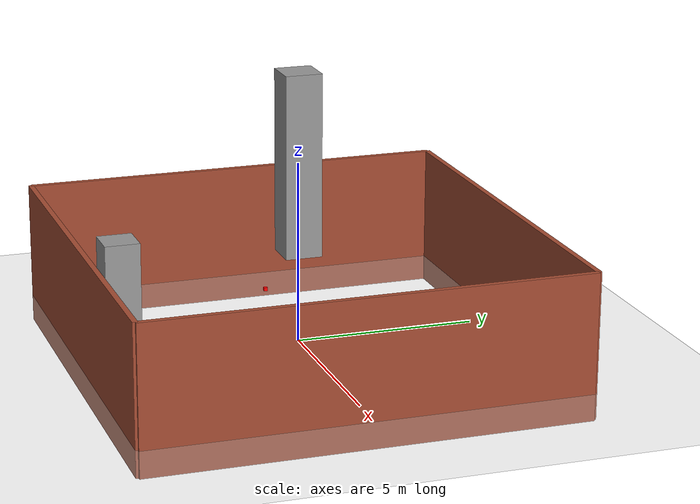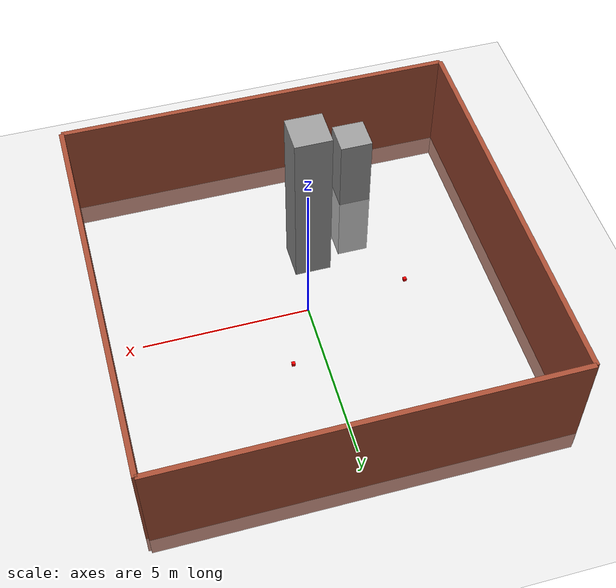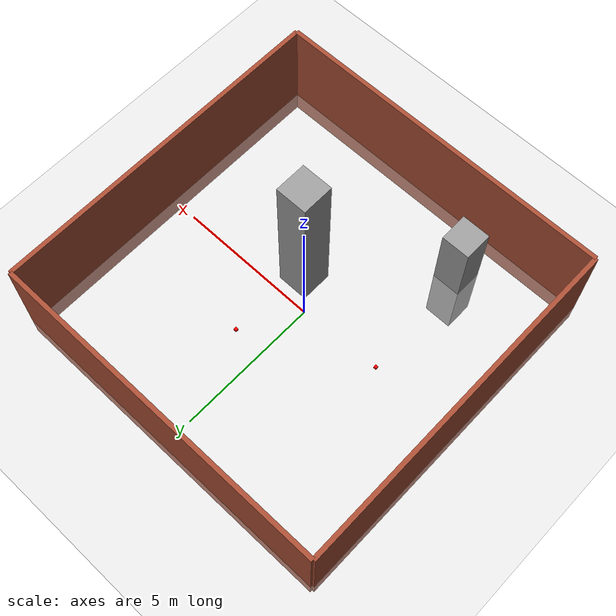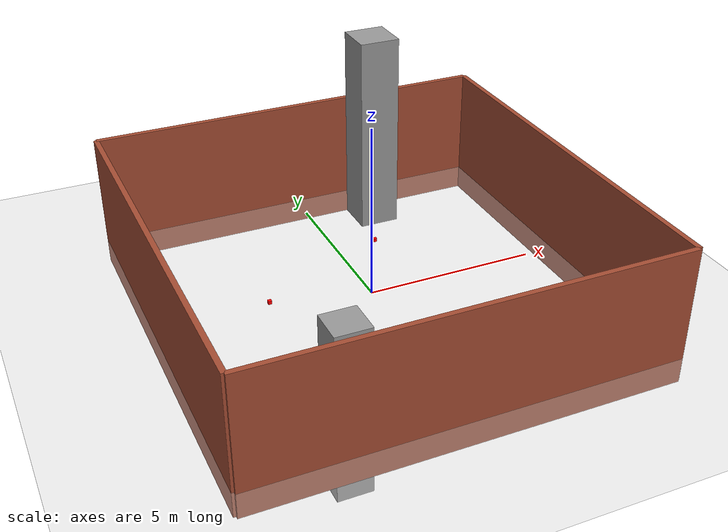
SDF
<sdf version="1.6">
 <world name="default">
  <include><uri>model://sun</uri></include>
  <include><uri>model://ground_plane</uri></include>
  <model name="building">
   <link name="Wall_1">
    <collision name="Wall_1_Collision">
     <geometry><box><size>12.0 0.15 4.0</size></box></geometry>
     <pose>0 0 1.25 0 -0 0</pose>
    </collision>
    <visual name="Wall_1_Visual">
     <pose>0 0 1.25 0 -0 0</pose>
     <geometry><box><size>12.0 0.15 4.0</size></box></geometry>
     <material>
      <script><uri>file://media/materials/scripts/gazebo.material</uri><name>Gazebo/Bricks</name></script>
      <ambient>1 1 1 1</ambient>
     </material>
     <meta><layer>0</layer></meta>
    </visual>
    <pose>0 6.0 0 0 -0 0</pose>
   </link>
   <link name="Wall_2">
    <collision name="Wall_2_Collision">
     <geometry><box><size>12.0 0.15 4.0</size></box></geometry>
     <pose>0 0 1.25 0 -0 0</pose>
    </collision>
    <visual name="Wall_2_Visual">
     <pose>0 0 1.25 0 -0 0</pose>
     <geometry><box><size>12.0 0.15 4.0</size></box></geometry>
     <material>
      <script><uri>file://media/materials/scripts/gazebo.material</uri><name>Gazebo/Bricks</name></script>
      <ambient>1 1 1 1</ambient>
     </material>
     <meta><layer>0</layer></meta>
    </visual>
    <pose>6.0 0 0 0 -0 -1.5707</pose>
   </link>
   <link name="Wall_3">
    <collision name="Wall_3_Collision">
     <geometry><box><size>12.0 0.15 4.0</size></box></geometry>
     <pose>0 0 1.25 0 -0 0</pose>
    </collision>
    <visual name="Wall_3_Visual">
     <pose>0 0 1.25 0 -0 0</pose>
     <geometry><box><size>12.0 0.15 4.0</size></box></geometry>
     <material>
      <script><uri>file://media/materials/scripts/gazebo.material</uri><name>Gazebo/Bricks</name></script>
      <ambient>1 1 1 1</ambient>
     </material>
     <meta><layer>0</layer></meta>
    </visual>
    <pose>0 -6.0 0 0 -0 3.14159</pose>
   </link>
   <link name="Wall_4">
    <collision name="Wall_4_Collision">
     <geometry><box><size>12.0 0.15 4.0</size></box></geometry>
     <pose>0 0 1.25 0 -0 0</pose>
    </collision>
    <visual name="Wall_4_Visual">
     <pose>0 0 1.25 0 -0 0</pose>
     <geometry><box><size>12.0 0.15 4.0</size></box></geometry>
     <material>
      <script><uri>file://media/materials/scripts/gazebo.material</uri><name>Gazebo/Bricks</name></script>
      <ambient>1 1 1 1</ambient>
     </material>
     <meta><layer>0</layer></meta>
    </visual>
    <pose>-6.0 0 0 0 -0 1.5707</pose>
   </link>
   <static>1</static>
  </model>
  <model name="box_z=0.5m">
   <link name="link">
    <pose>0 0 2.5 0 -0 0</pose>
    <inertial>
     <mass>1</mass>
     <inertia>
      <ixx>0.166667</ixx>
      <ixy>0</ixy>
      <ixz>0</ixz>
      <iyy>0.166667</iyy>
      <iyz>0</iyz>
      <izz>0.166667</izz>
     </inertia>
    </inertial>
    <visual name="visual">
     <pose>0 0 2.5 0 -0 0</pose>
     <geometry><box><size>1 1 5.0</size></box></geometry>
     <material>
      <script><name>Gazebo/Grey</name><uri>file://media/materials/scripts/gazebo.material</uri></script>
     </material>
    </visual>
    <collision name="collision">
     <pose>0 0 2.5 0 -0 0</pose>
     <geometry><box><size>1 1 5.0</size></box></geometry>
    </collision>
   </link>
  </model>
  <model name="box_z=0.6m">
   <link name="link">
    <pose>-2.61035 -4.32355 0 0 -0 0</pose>
    <inertial>
     <mass>1</mass>
     <inertia>
      <ixx>0.166667</ixx>
      <ixy>0</ixy>
      <ixz>0</ixz>
      <iyy>0.166667</iyy>
      <iyz>0</iyz>
      <izz>0.166667</izz>
     </inertia>
    </inertial>
    <visual name="visual">
     <geometry><box><size>1 1 5.0</size></box></geometry>
     <material>
      <script><name>Gazebo/Grey</name><uri>file://media/materials/scripts/gazebo.material</uri></script>
     </material>
    </visual>
    <collision name="collision"><geometry><box><size>1 1 5.0</size></box></geometry></collision>
   </link>
  </model>
  <plugin name="ros_link_attacher_plugin" filename="libgazebo_ros_link_attacher.so"/>
  <model name="radiation_source_1">
   <pose>-3.0 0 0.5 0 0 0</pose>
   <static>true</static>
   <link name="link_radiation_source">
    <visual name="visual_radiation_source">
     <geometry><box><size>0.1 0.1 0.1</size></box></geometry>
     <material><ambient>1 0 0 1</ambient><diffuse>1 0 0 1</diffuse></material>
    </visual>
    <sensor name="radiation_sources" type="radiation_source">
     <always_on>1</always_on>
     <update_rate>1.0</update_rate>
     <topic>source_1/gamma</topic>
     <plugin filename="libradiation_source_plugin.so" name="radiation_source_plugin"/>
    </sensor>
   </link>
  </model>
  <model name="radiation_source_2">
   <pose>1.0 2.0 0.4 0 0 0</pose>
   <static>true</static>
   <link name="link_radiation_source">
    <visual name="visual_radiation_source">
     <geometry><box><size>0.1 0.1 0.1</size></box></geometry>
     <material><ambient>1 0 0 1</ambient><diffuse>1 0 0 1</diffuse></material>
    </visual>
    <sensor name="radiation_sources" type="radiation_source">
     <always_on>1</always_on>
     <update_rate>1.0</update_rate>
     <topic>source_2/gamma</topic>
     <plugin filename="libradiation_source_plugin.so" name="radiation_source_plugin"/>
    </sensor>
   </link>
  </model>
 </world>
</sdf>
